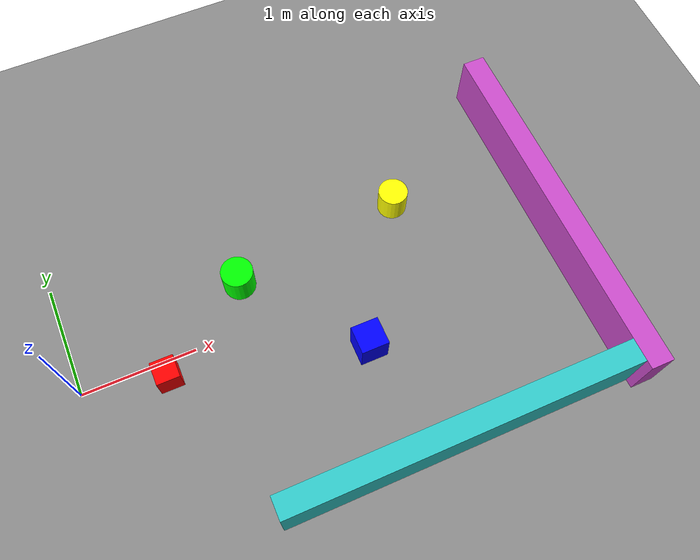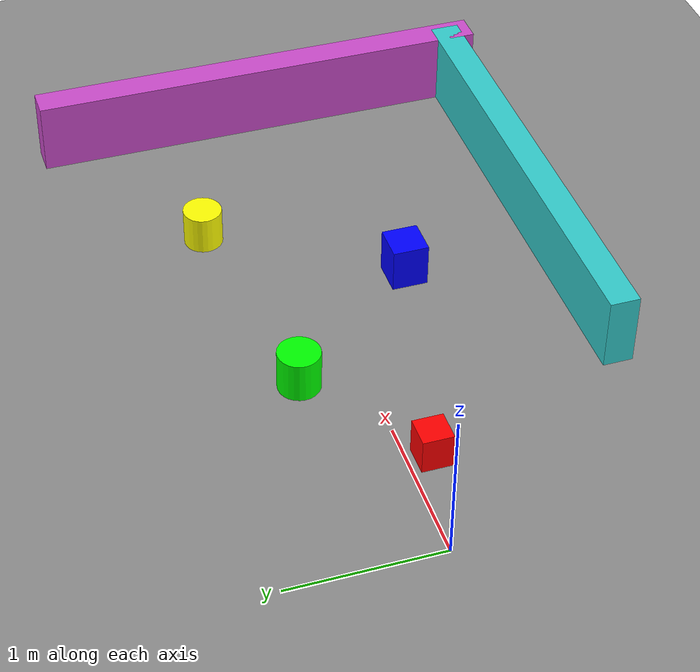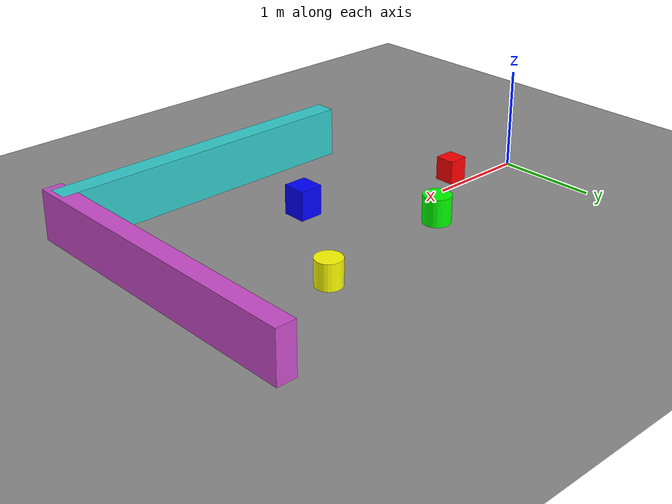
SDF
<?xml version="1.0" ?>
<sdf version="1.7">
  <world name="obstacle_world">

    <light type="directional" name="soft_light">
      <cast_shadows>false</cast_shadows>
      <pose>0 0 8 0 0 0</pose>
      <diffuse>0.9 0.9 0.9 1</diffuse>
      <specular>0.1 0.1 0.1 1</specular>
      <direction>-0.2 0.1 -1</direction>
    </light>

    <plugin filename="gz-sim-physics-system" name="gz::sim::systems::Physics"/>
    <plugin filename="gz-sim-user-commands-system" name="gz::sim::systems::UserCommands"/>
    <plugin filename="gz-sim-scene-broadcaster-system" name="gz::sim::systems::SceneBroadcaster"/>
    <plugin filename="gz-sim-sensors-system" name="gz::sim::systems::Sensors">
      <render_engine>ogre2</render_engine>
    </plugin>

    <!-- Ground -->
    <model name="ground_plane">
      <static>true</static>
      <link name="link">
        <collision name="collision">
          <geometry>
            <plane>
              <normal>0 0 1</normal>
              <size>30 30</size>
            </plane>
          </geometry>
        </collision>
        <visual name="visual">
          <geometry>
            <plane>
              <normal>0 0 1</normal>
              <size>30 30</size>
            </plane>
          </geometry>
          <material>
            <ambient>0.55 0.55 0.55 1</ambient>
            <diffuse>0.55 0.55 0.55 1</diffuse>
          </material>
        </visual>
      </link>
    </model>

    <!-- ================= OBSTACLES IN +X ================= -->

    <model name="obs_1">
      <static>true</static>
      <pose>0.72 -0.15 0.12 0 0 0</pose>
      <link name="link">
        <collision name="collision">
          <geometry><box><size>0.20 0.20 0.24</size></box></geometry>
        </collision>
        <visual name="visual">
          <geometry><box><size>0.20 0.20 0.24</size></box></geometry>
          <material>
            <ambient>1 0 0 1</ambient>
            <diffuse>1 0 0 1</diffuse>
          </material>
        </visual>
      </link>
    </model>

    <model name="obs_2">
      <static>true</static>
      <pose>1.55 0.42 0.14 0 0 0</pose>
      <link name="link">
        <collision name="collision">
          <geometry><cylinder><radius>0.14</radius><length>0.28</length></cylinder></geometry>
        </collision>
        <visual name="visual">
          <geometry><cylinder><radius>0.14</radius><length>0.28</length></cylinder></geometry>
          <material>
            <ambient>0 1 0 1</ambient>
            <diffuse>0 1 0 1</diffuse>
          </material>
        </visual>
      </link>
    </model>

    <model name="obs_3">
      <static>true</static>
      <pose>2.35 -0.55 0.15 0 0 0</pose>
      <link name="link">
        <collision name="collision">
          <geometry><box><size>0.24 0.24 0.30</size></box></geometry>
        </collision>
        <visual name="visual">
          <geometry><box><size>0.24 0.24 0.30</size></box></geometry>
          <material>
            <ambient>0 0 1 1</ambient>
            <diffuse>0 0 1 1</diffuse>
          </material>
        </visual>
      </link>
    </model>

    <model name="obs_4">
      <static>true</static>
      <pose>3.10 0.62 0.13 0 0 0</pose>
      <link name="link">
        <collision name="collision">
          <geometry><cylinder><radius>0.13</radius><length>0.26</length></cylinder></geometry>
        </collision>
        <visual name="visual">
          <geometry><cylinder><radius>0.13</radius><length>0.26</length></cylinder></geometry>
          <material>
            <ambient>1 1 0 1</ambient>
            <diffuse>1 1 0 1</diffuse>
          </material>
        </visual>
      </link>
    </model>

    <!-- ================= INVERTED L WALL ================= -->

    <model name="wall_front">
      <static>true</static>
      <pose>4.30 -0.123 0.25 0 0 0</pose>
      <link name="link">
        <collision name="collision">
          <geometry><box><size>0.20 3.2 0.50</size></box></geometry>
        </collision>
        <visual name="visual">
          <geometry><box><size>0.20 3.2 0.50</size></box></geometry>
          <material>
            <ambient>0.8 0.3 0.8 1</ambient>
            <diffuse>0.8 0.3 0.8 1</diffuse>
          </material>
        </visual>
      </link>
    </model>

    <model name="wall_side">
      <static>true</static>
      <pose>2.75 -1.55 0.25 0 0 1.5708</pose>
      <link name="link">
        <collision name="collision">
          <geometry><box><size>0.20 3.2 0.50</size></box></geometry>
        </collision>
        <visual name="visual">
          <geometry><box><size>0.20 3.2 0.50</size></box></geometry>
          <material>
            <ambient>0.2 0.8 0.8 1</ambient>
            <diffuse>0.2 0.8 0.8 1</diffuse>
          </material>
        </visual>
      </link>
    </model>

  </world>
</sdf>
